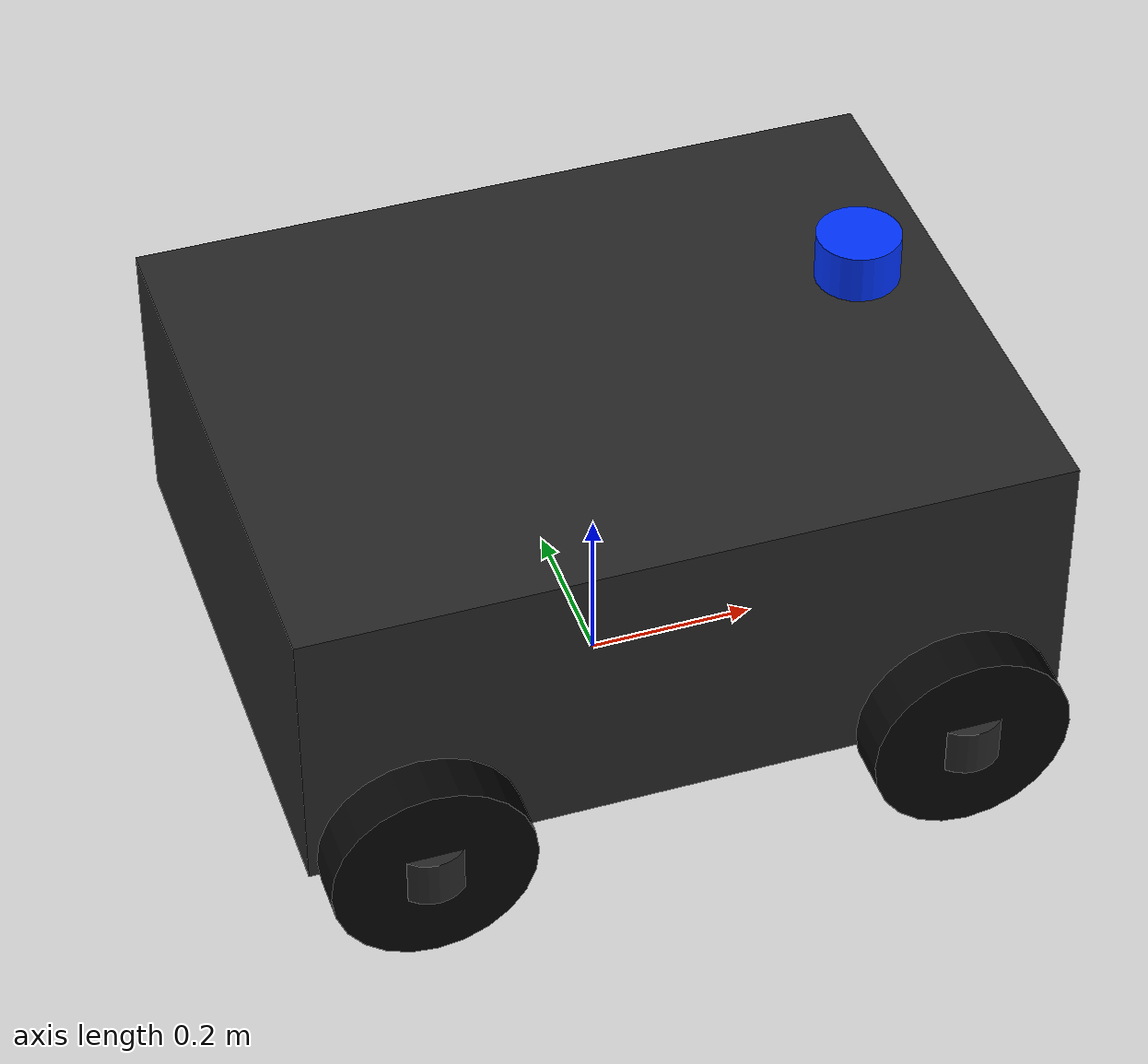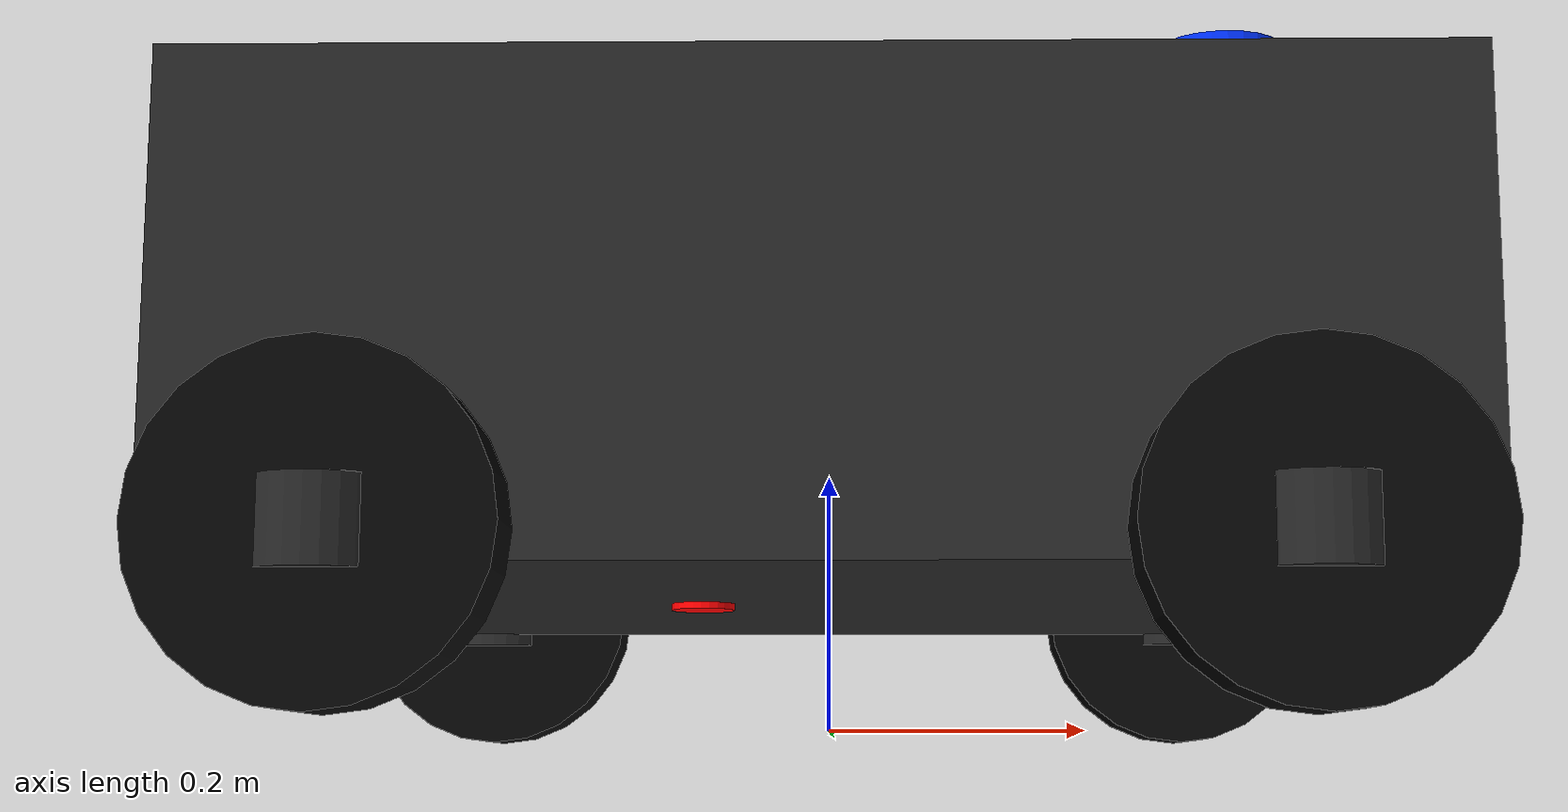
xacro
<?xml version="1.0"?>
<robot name="fre_robot_minimal" xmlns:xacro="http://www.ros.org/wiki/xacro">

  <!-- Basic dimensions       -->
  <xacro:property name="base_length" value="0.90"/>
  <xacro:property name="base_width"  value="0.70"/>
  <xacro:property name="base_height" value="0.35"/>

  <xacro:property name="wheel_radius" value="0.12"/>
  <xacro:property name="wheel_width"  value="0.06"/>

  <xacro:property name="wheel_x_front" value="0.32"/>
  <xacro:property name="wheel_x_rear"  value="-0.32"/>
  <xacro:property name="wheel_y_left"  value="0.38"/>
  <xacro:property name="wheel_y_right" value="-0.38"/>
  <xacro:property name="wheel_z"       value="-0.155"/>

  <!-- base_link center is 0.275 m above ground.
       wheel center is at 0.275 - 0.155 = 0.120 m.
       wheel radius is 0.120 m, so wheels touch the ground. -->

  <!-- Materials              -->
  <material name="dark_gray">
    <color rgba="0.15 0.15 0.15 1.0"/>
  </material>

  <material name="black">
    <color rgba="0.02 0.02 0.02 1.0"/>
  </material>

  <material name="blue">
    <color rgba="0.0 0.2 1.0 1.0"/>
  </material>

  <material name="green">
    <color rgba="0.0 0.8 0.2 1.0"/>
  </material>

  <material name="yellow">
    <color rgba="1.0 0.8 0.0 1.0"/>
  </material>

  <material name="red">
    <color rgba="1.0 0.0 0.0 1.0"/>
  </material>

  <!-- Macro: 4WS wheel unit  -->
  <xacro:macro name="steered_wheel" params="prefix x y z">

    <!-- Steering carrier. This is the part that turns around the vertical Z axis. -->
    <link name="${prefix}_steering_link">
      <visual>
        <origin xyz="0 0 0" rpy="0 0 0"/>
        <geometry>
          <cylinder radius="0.045" length="0.06"/>
        </geometry>
        <material name="dark_gray"/>
      </visual>

      <collision>
        <origin xyz="0 0 0" rpy="0 0 0"/>
        <geometry>
          <cylinder radius="0.045" length="0.06"/>
        </geometry>
      </collision>

      <inertial>
        <origin xyz="0 0 0"/>
        <mass value="0.5"/>
        <inertia ixx="0.005" ixy="0" ixz="0"
                 iyy="0.005" iyz="0"
                 izz="0.005"/>
      </inertial>
    </link>

    <joint name="${prefix}_steering_joint" type="revolute">
      <parent link="base_link"/>
      <child link="${prefix}_steering_link"/>
      <origin xyz="${x} ${y} ${z}" rpy="0 0 0"/>
      <axis xyz="0 0 1"/>
      <limit lower="-0.785" upper="0.785" effort="50.0" velocity="2.0"/>
    </joint>

    <!-- Wheel. This rotates around the local Y axis. -->
    <link name="${prefix}_wheel_link">
      <visual>
        <origin xyz="0 0 0" rpy="1.5708 0 0"/>
        <geometry>
          <cylinder radius="${wheel_radius}" length="${wheel_width}"/>
        </geometry>
        <material name="black"/>
      </visual>

      <collision>
        <origin xyz="0 0 0" rpy="1.5708 0 0"/>
        <geometry>
          <cylinder radius="${wheel_radius}" length="${wheel_width}"/>
        </geometry>
      </collision>

      <inertial>
        <origin xyz="0 0 0"/>
        <mass value="1.0"/>
        <inertia ixx="0.01" ixy="0" ixz="0"
                 iyy="0.01" iyz="0"
                 izz="0.01"/>
      </inertial>
    </link>

    <joint name="${prefix}_wheel_joint" type="continuous">
      <parent link="${prefix}_steering_link"/>
      <child link="${prefix}_wheel_link"/>
      <origin xyz="0 0 0" rpy="0 0 0"/>
      <axis xyz="0 1 0"/>
    </joint>

    <gazebo reference="${prefix}_steering_link">
      <material>Gazebo/DarkGrey</material>
    </gazebo>

    <gazebo reference="${prefix}_wheel_link">
      <material>Gazebo/Black</material>
      <mu1>5.0</mu1>
      <mu2>5.0</mu2>
      <kp>1000000.0</kp>
      <kd>10.0</kd>
    </gazebo>

  </xacro:macro>

  <!-- base_footprint         -->
  <link name="base_footprint"/>

  <joint name="base_footprint_to_base_link" type="fixed">
    <parent link="base_footprint"/>
    <child link="base_link"/>
    <origin xyz="0 0 0.275" rpy="0 0 0"/>
  </joint>

  <!-- base_link              -->
  <link name="base_link">
    <visual>
      <origin xyz="0 0 0" rpy="0 0 0"/>
      <geometry>
        <box size="${base_length} ${base_width} ${base_height}"/>
      </geometry>
      <material name="dark_gray"/>
    </visual>

    <collision>
      <origin xyz="0 0 0" rpy="0 0 0"/>
      <geometry>
        <box size="${base_length} ${base_width} ${base_height}"/>
      </geometry>
    </collision>

    <inertial>
      <origin xyz="0 0 0"/>
      <mass value="25.0"/>
      <inertia ixx="1.5" ixy="0" ixz="0"
               iyy="1.5" iyz="0"
               izz="1.5"/>
    </inertial>
  </link>

  <!-- Four steered wheels    -->
  <xacro:steered_wheel prefix="front_left"  x="${wheel_x_front}" y="${wheel_y_left}"  z="${wheel_z}"/>
  <xacro:steered_wheel prefix="front_right" x="${wheel_x_front}" y="${wheel_y_right}" z="${wheel_z}"/>
  <xacro:steered_wheel prefix="rear_left"   x="${wheel_x_rear}"  y="${wheel_y_left}"  z="${wheel_z}"/>
  <xacro:steered_wheel prefix="rear_right"  x="${wheel_x_rear}"  y="${wheel_y_right}" z="${wheel_z}"/>

  <!-- lidar                  -->
  <link name="lidar_link">
    <visual>
      <geometry>
        <cylinder radius="0.05" length="0.06"/>
      </geometry>
      <material name="blue"/>
    </visual>

    <collision>
      <geometry>
        <cylinder radius="0.05" length="0.06"/>
      </geometry>
    </collision>

    <inertial>
      <origin xyz="0 0 0"/>
      <mass value="0.2"/>
      <inertia ixx="0.001" ixy="0" ixz="0"
               iyy="0.001" iyz="0"
               izz="0.001"/>
    </inertial>
  </link>

  <joint name="base_link_to_lidar" type="fixed">
    <parent link="base_link"/>
    <child link="lidar_link"/>
    <origin xyz="0.32 0 0.25" rpy="0 0 0"/>
  </joint>

  <!-- front depth camera     -->
  <link name="front_camera_link">
    <visual>
      <geometry>
        <box size="0.08 0.03 0.03"/>
      </geometry>
      <material name="green"/>
    </visual>

    <collision>
      <geometry>
        <box size="0.08 0.03 0.03"/>
      </geometry>
    </collision>

    <inertial>
      <origin xyz="0 0 0"/>
      <mass value="0.1"/>
      <inertia ixx="0.0005" ixy="0" ixz="0"
               iyy="0.0005" iyz="0"
               izz="0.0005"/>
    </inertial>
  </link>

  <joint name="base_link_to_front_camera" type="fixed">
    <parent link="base_link"/>
    <child link="front_camera_link"/>
    <origin xyz="0.43 0 0.10" rpy="0 0 0"/>
  </joint>

  <link name="front_camera_optical_frame"/>

  <joint name="front_camera_to_optical" type="fixed">
    <parent link="front_camera_link"/>
    <child link="front_camera_optical_frame"/>
    <origin xyz="0 0 0" rpy="-1.5708 0 -1.5708"/>
  </joint>

  <!-- downward depth camera  -->
  <link name="down_camera_link">
    <visual>
      <geometry>
        <box size="0.08 0.03 0.03"/>
      </geometry>
      <material name="yellow"/>
    </visual>

    <collision>
      <geometry>
        <box size="0.08 0.03 0.03"/>
      </geometry>
    </collision>

    <inertial>
      <origin xyz="0 0 0"/>
      <mass value="0.1"/>
      <inertia ixx="0.0005" ixy="0" ixz="0"
               iyy="0.0005" iyz="0"
               izz="0.0005"/>
    </inertial>
  </link>

  <joint name="base_link_to_down_camera" type="fixed">
    <parent link="base_link"/>
    <child link="down_camera_link"/>
    <origin xyz="0.15 0 0.05" rpy="0 1.5708 0"/>
  </joint>

  <link name="down_camera_optical_frame"/>

  <joint name="down_camera_to_optical" type="fixed">
    <parent link="down_camera_link"/>
    <child link="down_camera_optical_frame"/>
    <origin xyz="0 0 0" rpy="-1.5708 0 -1.5708"/>
  </joint>

  <!-- treatment tool/nozzle  -->
  <link name="treatment_tool_link">
    <visual>
      <geometry>
        <cylinder radius="0.025" length="0.12"/>
      </geometry>
      <material name="red"/>
    </visual>

    <collision>
      <geometry>
        <cylinder radius="0.025" length="0.12"/>
      </geometry>
    </collision>

    <inertial>
      <origin xyz="0 0 0"/>
      <mass value="0.1"/>
      <inertia ixx="0.0005" ixy="0" ixz="0"
               iyy="0.0005" iyz="0"
               izz="0.0005"/>
    </inertial>
  </link>

  <joint name="base_link_to_treatment_tool" type="fixed">
    <parent link="base_link"/>
    <child link="treatment_tool_link"/>
    <origin xyz="-0.10 0 -0.12" rpy="0 0 0"/>
  </joint>

  <!-- Gazebo materials       -->
  <gazebo reference="base_link">
    <material>Gazebo/DarkGrey</material>
  </gazebo>

  <gazebo reference="lidar_link">
    <material>Gazebo/Blue</material>
  </gazebo>

  <gazebo reference="front_camera_link">
    <material>Gazebo/Green</material>
  </gazebo>

  <gazebo reference="down_camera_link">
    <material>Gazebo/Yellow</material>
  </gazebo>

  <gazebo reference="treatment_tool_link">
    <material>Gazebo/Red</material>
  </gazebo>

  <!-- Simple planar movement -->
  <gazebo>
    <plugin name="fre_planar_move" filename="libgazebo_ros_planar_move.so">
      <commandTopic>cmd_vel</commandTopic>
      <odometryTopic>odom</odometryTopic>
      <odometryFrame>odom</odometryFrame>
      <robotBaseFrame>base_footprint</robotBaseFrame>
      <publishOdomTF>true</publishOdomTF>
      <publishOdometryTf>true</publishOdometryTf>
      <updateRate>50.0</updateRate>
    </plugin>
  </gazebo>

</robot>
